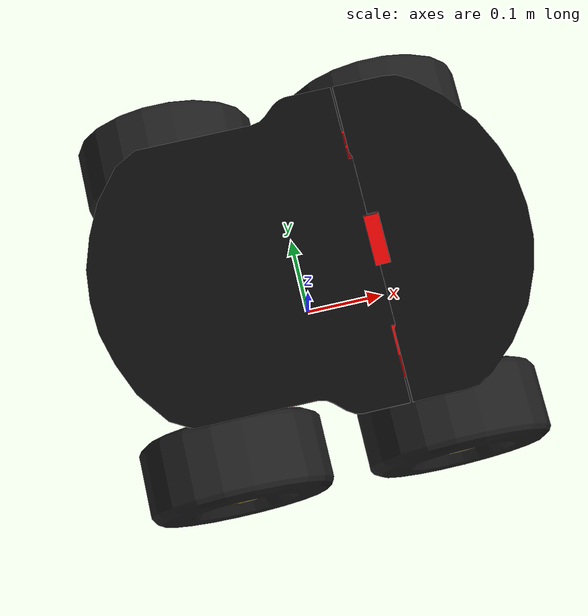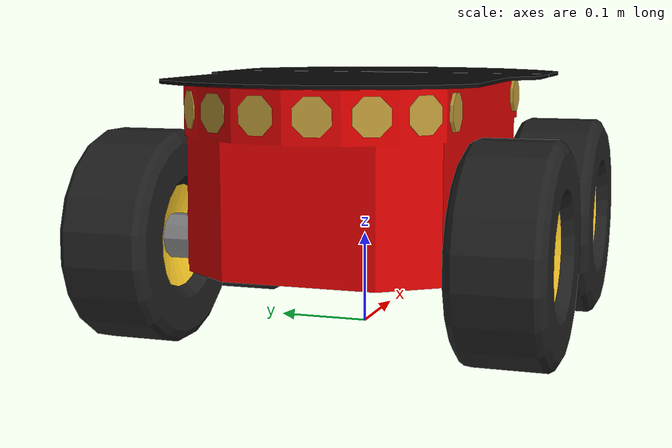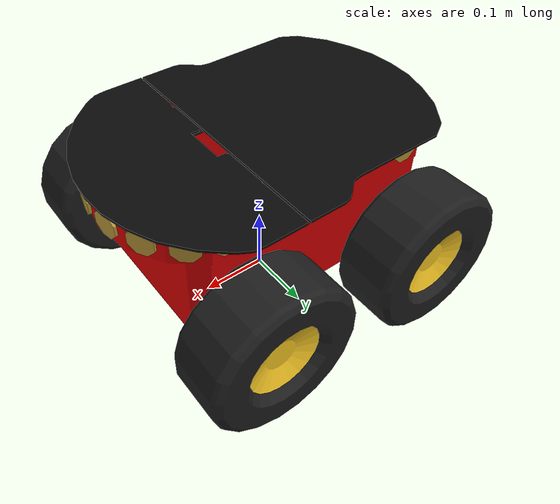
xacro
<?xml version="1.0"?>

<robot xmlns:sensor="http://playerstage.sourceforge.net/gazebo/xmlschema/#sensor"
       xmlns:controller="http://playerstage.sourceforge.net/gazebo/xmlschema/#controller"
       xmlns:interface="http://playerstage.sourceforge.net/gazebo/xmlschema/#interface"
       xmlns:xacro="http://ros.org/wiki/xacro"
name="pioneer3at">

<!-- Chassis -->
	<link name="pioneer3at_link">

		<inertial>
			<mass value="31.5"/> <!-- P3AT 18.6kg plus three batteries @ 2.4kg each  minus four wheels @ 1.4 kg ea and top plate @ 0.1 kg-->
			<origin xyz="-0.1 0 0.177"/>
			 <inertia ixx="0.3338" ixy="0.0" ixz="0.0" iyy="0.4783" iyz="0.0" izz="0.3338"/>
		</inertial>
		<visual>
			<origin xyz="0 0 0.177" rpy="0 0 0"/>
			<geometry name="pioneer_geom">
				<mesh filename="package://tf_demo/meshes/p3at_meshes/chassis.stl"/>
			</geometry>
			<material name="ChassisRed">
				<color rgba="0.851 0.0 0.0 1.0"/>
			</material>
		</visual>
		<collision>
			<origin xyz="0 0 0.177" rpy="0 0 0"/>
				<geometry>
					<mesh filename="package://tf_demo/meshes/p3at_meshes/chassis.stl"/>
				</geometry>
		</collision>
	</link>
	<gazebo reference="pioneer3at_link">
		<material value="Gazebo/Red"/>
	</gazebo>

<!-- Top -->
	<link name="top_plate">
		<inertial>
			<mass value="0.1"/>
			<origin xyz="-0.025 0 -0.223"/>
			<inertia ixx="1.0" ixy="0.0" ixz="0.0"
				 iyy="1.0" iyz="0.0"
 				izz="1.0"/>
		</inertial>
		<visual>
			<origin xyz="0 0 0" rpy="0 0 0"/>
			<geometry name="pioneer_geom">
				<mesh filename="package://tf_demo/meshes/p3at_meshes/top.stl"/>
			</geometry>
			<material name="TopBlack">
					<color rgba="0.038 0.038 0.038 1.0"/>
			</material>
		</visual>

	</link>
	<gazebo reference="top_plate">
    <material>Gazebo/Black</material>
	</gazebo>

	<joint name="base_top_joint" type="fixed">
		<origin xyz="0.003 0 0.274" rpy="0 0 0"/>
		<parent link="pioneer3at_link"/>
		<child link="top_plate"/>
	</joint>
<!-- Front + Back Sonar -->
	<link name="front_sonar">
		<inertial>
			<mass value="0.1"/>
			<origin xyz="0 0 0"/>
			<inertia ixx="1.0" ixy="0.0" ixz="0.0"
				 iyy="1.0" iyz="0.0" izz="1.0"/>
		</inertial>
		<visual>
			<origin xyz="0 0 0" rpy="0 0 0"/>
			<geometry name="pioneer_geom">
				<mesh filename="package://tf_demo/meshes/p3at_meshes/front_sonar.stl"/>
			</geometry>
			<material name="SonarYellow">
				<color rgba="0.715 0.583 0.210 1.0"/>
			</material>
		</visual>
	</link>
	<gazebo reference="front_sonar">
		<material value="Gazebo/Yellow"/>
	</gazebo>

	<joint name="base_front_joint" type="fixed">
		<origin xyz="0.193 0 0.25" rpy="0 0 0"/>
		<parent link="pioneer3at_link"/>
		<child link="front_sonar"/>
	</joint>

	<link name="back_sonar">
		<inertial>
			<mass value="0.1"/>
			<origin xyz="0 0 0"/>
			<inertia ixx="1.0" ixy="0.0" ixz="0.0"
				 iyy="1.0" iyz="0.0" izz="1.0"/>
		</inertial>
		<visual>
			<origin xyz="0 0 0" rpy="0 0 0"/>
			<geometry name="pioneer_geom">
				<mesh filename="package://tf_demo/meshes/p3at_meshes/back_sonar.stl"/>
			</geometry>
			<material name="SonarYellow">
				<color rgba="0.715 0.583 0.210 1.0"/>
			</material>
		</visual>
	</link>
	<gazebo reference="back_sonar">
		<material value="Gazebo/Yellow"/>
	</gazebo>

	<joint name="base_back_joint" type="fixed">
		<origin xyz="-0.187 0 0.247" rpy="0 0 0"/>
		<parent link="pioneer3at_link"/>
		<child link="back_sonar"/>
	</joint>

<xacro:macro name="p3at_drive_side" params="side reflect">

  <!-- Front Axles + Wheels + Hubcaps -->
	<link name="p3at_front_${side}_axle">
		<inertial>
			<mass value="0.1"/>
			<origin xyz="0 0 0"/>
			<inertia ixx="1.0" ixy="0.0" ixz="0.0"
				 iyy="1.0" iyz="0.0" izz="1.0"/>
  	 	</inertial>
	<visual>
		<origin xyz="0 0 0" rpy="0 0 0"/>
		<geometry name="pioneer_geom">
			<mesh filename="package://tf_demo/meshes/p3at_meshes/axle.stl"/>
		</geometry>
		<material name="AxleGrey">
			<color rgba="0.5 0.5 0.5 1"/>
		</material>
	</visual>
	</link>
	<gazebo reference="p3at_front_${side}_axle">
		<material value="Gazebo/Grey"/>
	</gazebo>

	<joint name="base_front_${side}_axle_joint" type="fixed">
		<origin xyz="0.135 ${reflect*0.156} 0.111" rpy="0 0 0"/>
		<parent link="pioneer3at_link"/>
		<child link="p3at_front_${side}_axle"/>
	</joint>

	<link name="p3at_front_${side}_hub">
		<inertial>
			<mass value="0.1"/>
			<origin xyz="0 0 0"/>
			<inertia ixx="1.0" ixy="0.0" ixz="0.0"
				 iyy="1.0" iyz="0.0" izz="1.0"/>
  	 	</inertial>
	<visual>
		<origin xyz="0 0 0" rpy="0 0 0"/>
		<geometry name="pioneer_geom">
			<mesh filename="package://tf_demo/meshes/p3at_meshes/${side}_hubcap.stl"/>
		</geometry>
		<material name="HubcapYellow">
			<color rgba="1.0 0.811 0.151 1.0"/>
		</material>
	</visual>
	</link>
	<gazebo reference="p3at_front_${side}_hub">
		<material value="Gazebo/Yellow"/>
	</gazebo>

	<joint name="base_front_${side}_hub_joint" type="fixed">
		<origin xyz="0 ${reflect*0.041} 0" rpy="0 0 0"/>
		<parent link="p3at_front_${side}_axle"/>
		<child link="p3at_front_${side}_hub"/>
	</joint>

	<link name="p3at_front_${side}_wheel">
		<inertial>
			<mass value="1.2"/> <!-- 1.4 kg - axle 0.1 kg - hub 0.1 kg -->
			<origin xyz="0 0 0"/>
			<inertia ixx="0.012411765597" ixy="0" ixz="0"
         iyy="0.015218160428" iyz="0" izz="0.011763977943"/>
      </inertial>
	<visual>
		<origin xyz="0 0 0" rpy="0 0 0"/>
		<geometry name="pioneer_geom">
			<mesh filename="package://tf_demo/meshes/p3at_meshes/wheel.stl"/>
		</geometry>
		<material name="WheelBlack">
			<color rgba="0.117 0.117 0.117 1"/>
		</material>
	</visual>
	<collision>
		<origin xyz="0 0 0" rpy="${-3.1415927/2} 0 0"/>
		<geometry>
	    <cylinder radius="0.111" length="0.075"/>
		</geometry>
	</collision>
	</link>
	<gazebo reference="p3at_front_${side}_wheel">
		<material value="Gazebo/Black"/>
	</gazebo>

	<joint name="p3at_front_${side}_wheel_joint" type="continuous">
  	<axis xyz="0 1 0"/>
    <anchor xyz="0 0 0"/>
    <limit effort="100" velocity="100" />
    <joint_properties damping="0.7"/>
		<origin xyz="0 0 0" rpy="0 0 0"/>
		<parent link="p3at_front_${side}_hub"/>
		<child link="p3at_front_${side}_wheel"/>
	</joint>

<!-- Back Axles + Wheels + Hubcaps -->
	<link name="p3at_back_${side}_axle">
		<inertial>
			<mass value="0.1"/>
			<origin xyz="0 0 0"/>
			<inertia ixx="1.0" ixy="0.0" ixz="0.0"
				 iyy="1.0" iyz="0.0" izz="1.0"/>
  	 	</inertial>
	<visual>
		<origin xyz="0 0 0" rpy="0 0 0"/>
		<geometry name="pioneer_geom">
			<mesh filename="package://tf_demo/meshes/p3at_meshes/axle.stl"/>
		</geometry>
		<material name="AxleGrey">
			<color rgba="0.5 0.5 0.5 1"/>
		</material>
	</visual>
	<collision>
		<origin xyz="0 0 0" rpy="0 0 0"/>
		<geometry>
			<mesh filename="package://tf_demo/meshes/p3at_meshes/axle.stl"/>
		</geometry>
	</collision>
	</link>
	<gazebo reference="p3at_back_${side}_axle">
		<material value="Gazebo/Grey"/>
	</gazebo>

	<joint name="p3at_back_${side}_axle_joint" type="fixed">
		<origin xyz="-0.134 ${reflect*0.156} 0.111" rpy="0 0 0"/>
		<parent link="pioneer3at_link"/>
		<child link="p3at_back_${side}_axle"/>
	</joint>

	<link name="p3at_back_${side}_hub">
		<inertial>
			<mass value="0.1"/>
			<origin xyz="0 0 0"/>
			<inertia ixx="1.0" ixy="0.0" ixz="0.0"
				 iyy="1.0" iyz="0.0" izz="1.0"/>
  	 	</inertial>
	<visual>
		<origin xyz="0 0 0" rpy="0 0 0"/>
		<geometry name="pioneer_geom">
			<mesh filename="package://tf_demo/meshes/p3at_meshes/${side}_hubcap.stl"/>
		</geometry>
		<material name="HubcapYellow"/>
	</visual>
	<collision>
		<origin xyz="0 0 0" rpy="0 0 0"/>
		<geometry>
			<mesh filename="package://tf_demo/meshes/p3at_meshes/${side}_hubcap.stl"/>
		</geometry>
	</collision>
	</link>
	<gazebo reference="p3at_back_${side}_hub">
		<material value="Gazebo/Yellow"/>
	</gazebo>

	<joint name="p3at_back_${side}_hub_joint" type="fixed">
		<origin xyz="-0 ${reflect*0.041} 0" rpy="0 0 0"/>
		<parent link="p3at_back_${side}_axle"/>
		<child link="p3at_back_${side}_hub"/>
	</joint>

	<link name="p3at_back_${side}_wheel">
		<inertial>
			<mass value="1.2"/>
			<origin xyz="0 0 0"/>
			<inertia ixx="0.012411765597" ixy="0" ixz="0"
                                                      iyy="0.015218160428" iyz="0"
                                                                           izz="0.011763977943"/>
      </inertial>
	<visual>
		<origin xyz="0 0 0" rpy="0 0 0"/>
		<geometry name="pioneer_geom">
			<mesh filename="package://tf_demo/meshes/p3at_meshes/wheel.stl"/>
		</geometry>
		<material name="WheelBlack"/>
	</visual>
	<collision>
		<origin xyz="0 0 0" rpy="${-3.1415927/2} 0 0"/>
		<geometry>
	    <cylinder radius="0.111" length="0.075"/>
		</geometry>
	</collision>
	</link>
	<gazebo reference="p3at_back_${side}_wheel">
		<material value="Gazebo/Black"/>
	</gazebo>

	<joint name="p3at_back_${side}_wheel_joint" type="continuous">
	  <axis xyz="0 1 0"/>
    <anchor xyz="0 0 0"/>
    <limit effort="100" velocity="100" />
    <joint_properties damping="0.7"/>
		<origin xyz="0 0 0" rpy="0 0 0"/>
		<parent link="p3at_back_${side}_hub"/>
		<child link="p3at_back_${side}_wheel"/>
	</joint>

  <!-- see http://gazebosim.org/tutorials/?tut=ros_urdf -->

  <gazebo reference="p3at_back_${side}_wheel">
    <kp>1000000.0</kp> <!-- kp and kd for rubber -->
    <kd>100.0</kd>
    <mu1>1.0</mu1> <!-- was 10 -->
    <mu2>1.0</mu2>
    <!-- fdir1 0 1 0 /fdir1 --> <!-- see http://github.com/MobileRobots/amr-ros-config/issues/6 -->
    <maxVel>1.0</maxVel>
    <minDepth>0.00</minDepth>
    <material value="Gazebo/Black" />
  </gazebo>

  <gazebo reference="p3at_front_${side}_wheel">
    <kp>1000000.0</kp> <!-- kp and kd for rubber -->
    <kd>100.0</kd>
    <mu1>1.0</mu1> <!-- was 10 -->
    <mu2>1.0</mu2>
    <!-- fdir1 0 1 0 /fdir1 --> <!-- see http://github.com/MobileRobots/amr-ros-config/issues/6 -->
    <maxVel>1.0</maxVel>
    <minDepth>0.00</minDepth>
    <material value="Gazebo/Black" />
  </gazebo>

</xacro:macro>

<xacro:macro name="p3at_gazebo_ext">

<gazebo>
  <plugin name="skid_steer_drive_controller" filename="libgazebo_ros_skid_steer_drive.so">
    <updateRate>50.0</updateRate>
    <robotNamespace>sim_p3at</robotNamespace>
    <leftFrontJoint>p3at_front_left_wheel_joint</leftFrontJoint>
    <rightFrontJoint>p3at_front_right_wheel_joint</rightFrontJoint>
    <leftRearJoint>p3at_back_left_wheel_joint</leftRearJoint>
    <rightRearJoint>p3at_back_right_wheel_joint</rightRearJoint>
    <wheelSeparation>0.4</wheelSeparation>
    <wheelDiameter>0.215</wheelDiameter>
    <robotBaseFrame>pioneer3at_link</robotBaseFrame>
    <MaxForce>5.0</MaxForce>
    <torque>200</torque>
    <commandTopic>cmd_vel</commandTopic>
    <odometryTopic>p3at_odom</odometryTopic>
    <odometryFrame>odom</odometryFrame>
    <broadcastTF>1</broadcastTF>
  </plugin>
</gazebo>

</xacro:macro>

<xacro:p3at_drive_side side="left" reflect="1"/>
<xacro:p3at_drive_side side="right" reflect="-1"/>
<xacro:p3at_gazebo_ext/>

</robot>
